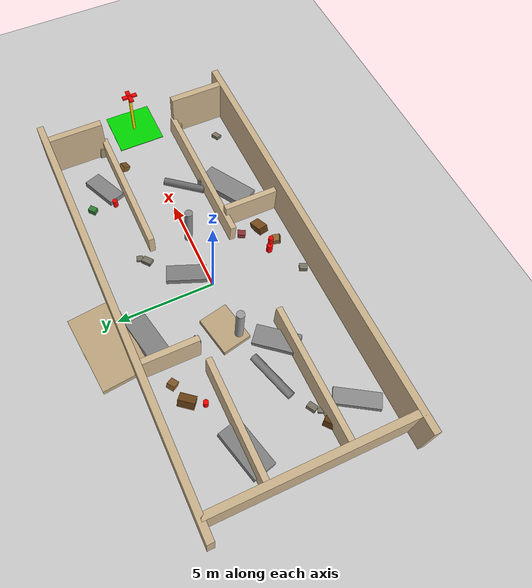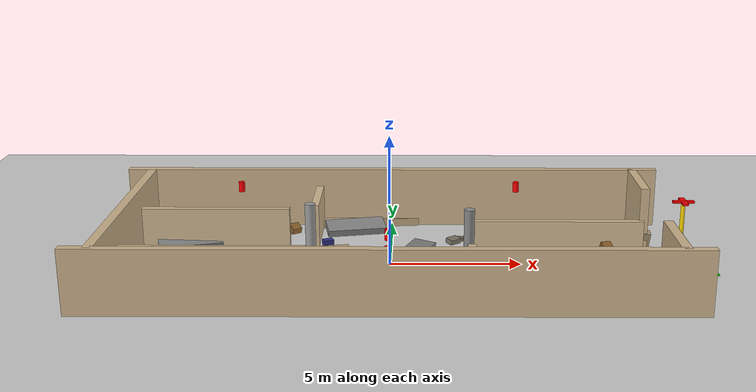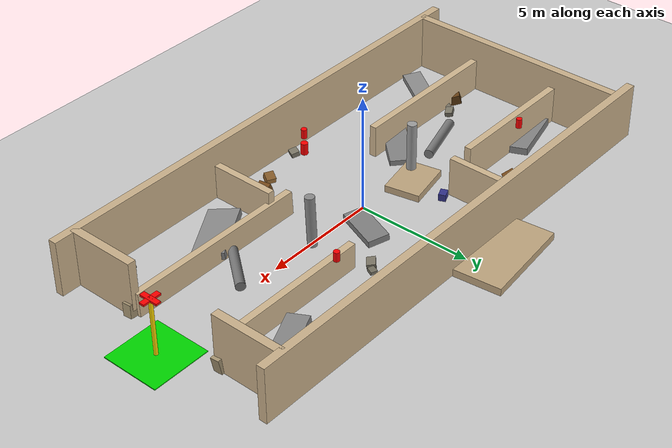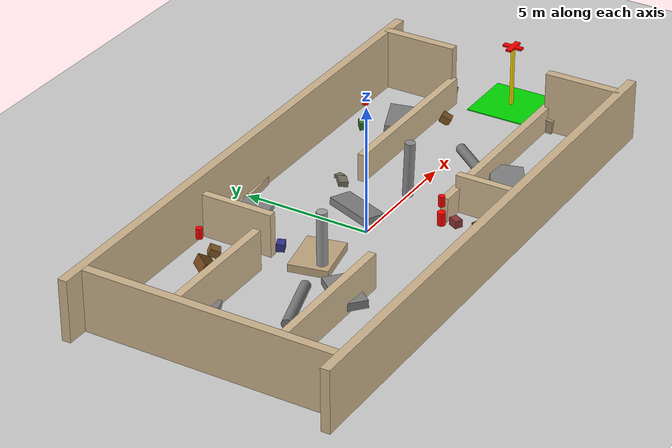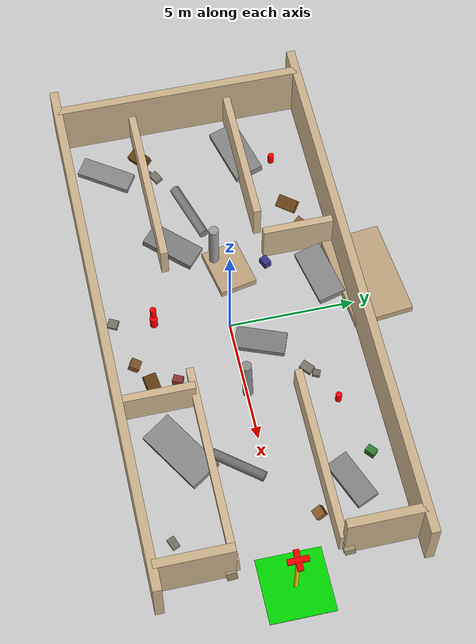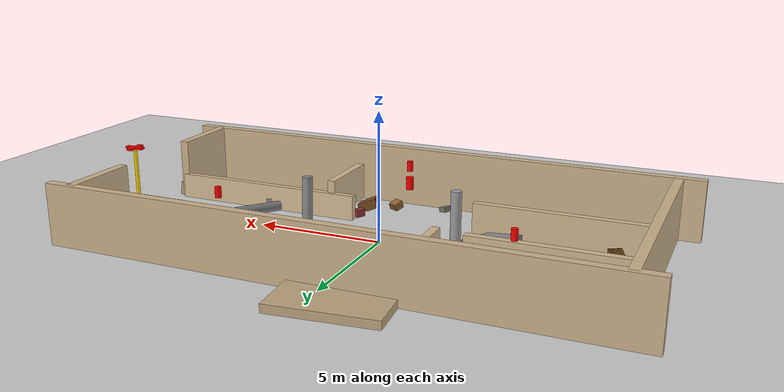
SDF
<sdf version="1.6">
 <world name="school_rescue_world">
  <physics type="ode">
   <real_time_update_rate>1000.0</real_time_update_rate>
   <max_step_size>0.001</max_step_size>
   <real_time_factor>1</real_time_factor>
  </physics>
  <scene>
   <ambient>0.6 0.55 0.50 1</ambient>
   <background>0.55 0.58 0.62 1</background>
   <shadows>true</shadows>
  </scene>
  <include><uri>model://sun</uri></include>
  <include><uri>model://ground_plane</uri></include>
  <model name="wall_north">
   <static>true</static>
   <pose>0 5 1.2 0 0 0</pose>
   <link name="link">
    <collision name="col"><geometry><box><size>22 0.35 2.4</size></box></geometry></collision>
    <visual name="vis">
     <geometry><box><size>22 0.35 2.4</size></box></geometry>
     <material><ambient>0.80 0.70 0.55 1</ambient><diffuse>0.80 0.70 0.55 1</diffuse></material>
    </visual>
   </link>
  </model>
  <model name="wall_north_fallen">
   <static>true</static>
   <pose>-1 5.8 0.12 1.5708 0 0.10</pose>
   <link name="link">
    <collision name="col"><geometry><box><size>4.0 0.35 2.4</size></box></geometry></collision>
    <visual name="vis">
     <geometry><box><size>4.0 0.35 2.4</size></box></geometry>
     <material><ambient>0.75 0.65 0.50 1</ambient><diffuse>0.75 0.65 0.50 1</diffuse></material>
    </visual>
   </link>
  </model>
  <model name="wall_south">
   <static>true</static>
   <pose>0 -5 1.2 0 0 0</pose>
   <link name="link">
    <collision name="col"><geometry><box><size>22 0.35 2.4</size></box></geometry></collision>
    <visual name="vis">
     <geometry><box><size>22 0.35 2.4</size></box></geometry>
     <material><ambient>0.80 0.70 0.55 1</ambient><diffuse>0.80 0.70 0.55 1</diffuse></material>
    </visual>
   </link>
  </model>
  <model name="wall_west">
   <static>true</static>
   <pose>-10 0 1.2 0 0 0</pose>
   <link name="link">
    <collision name="col"><geometry><box><size>0.35 10 2.4</size></box></geometry></collision>
    <visual name="vis">
     <geometry><box><size>0.35 10 2.4</size></box></geometry>
     <material><ambient>0.80 0.70 0.55 1</ambient><diffuse>0.80 0.70 0.55 1</diffuse></material>
    </visual>
   </link>
  </model>
  <model name="wall_east_north">
   <static>true</static>
   <pose>10 3.5 1.2 0 0 0</pose>
   <link name="link">
    <collision name="col"><geometry><box><size>0.35 3 2.4</size></box></geometry></collision>
    <visual name="vis">
     <geometry><box><size>0.35 3 2.4</size></box></geometry>
     <material><ambient>0.80 0.70 0.55 1</ambient><diffuse>0.80 0.70 0.55 1</diffuse></material>
    </visual>
   </link>
  </model>
  <model name="wall_east_south">
   <static>true</static>
   <pose>10 -3.5 1.2 0 0 0</pose>
   <link name="link">
    <collision name="col"><geometry><box><size>0.35 3 2.4</size></box></geometry></collision>
    <visual name="vis">
     <geometry><box><size>0.35 3 2.4</size></box></geometry>
     <material><ambient>0.80 0.70 0.55 1</ambient><diffuse>0.80 0.70 0.55 1</diffuse></material>
    </visual>
   </link>
  </model>
  <model name="gap_rubble_n">
   <static>true</static>
   <pose>10 2.2 0.30 0.15 0.10 0</pose>
   <link name="link">
    <collision name="col"><geometry><box><size>0.6 0.4 0.6</size></box></geometry></collision>
    <visual name="vis">
     <geometry><box><size>0.6 0.4 0.6</size></box></geometry>
     <material><ambient>0.65 0.58 0.45 1</ambient><diffuse>0.65 0.58 0.45 1</diffuse></material>
    </visual>
   </link>
  </model>
  <model name="gap_rubble_s">
   <static>true</static>
   <pose>10 -2.2 0.28 0.10 -0.08 0</pose>
   <link name="link">
    <collision name="col"><geometry><box><size>0.6 0.4 0.55</size></box></geometry></collision>
    <visual name="vis">
     <geometry><box><size>0.6 0.4 0.55</size></box></geometry>
     <material><ambient>0.65 0.58 0.45 1</ambient><diffuse>0.65 0.58 0.45 1</diffuse></material>
    </visual>
   </link>
  </model>
  <model name="corr_n_west">
   <static>true</static>
   <pose>-7 2 0.8 0 0 0</pose>
   <link name="link">
    <collision name="col"><geometry><box><size>6 0.3 1.6</size></box></geometry></collision>
    <visual name="vis">
     <geometry><box><size>6 0.3 1.6</size></box></geometry>
     <material><ambient>0.82 0.72 0.57 1</ambient><diffuse>0.82 0.72 0.57 1</diffuse></material>
    </visual>
   </link>
  </model>
  <model name="corr_n_east">
   <static>true</static>
   <pose>6.5 2 0.55 0 0 0</pose>
   <link name="link">
    <collision name="col"><geometry><box><size>7 0.3 1.1</size></box></geometry></collision>
    <visual name="vis">
     <geometry><box><size>7 0.3 1.1</size></box></geometry>
     <material><ambient>0.82 0.72 0.57 1</ambient><diffuse>0.82 0.72 0.57 1</diffuse></material>
    </visual>
   </link>
  </model>
  <model name="corr_s_west">
   <static>true</static>
   <pose>-6.5 -2 0.70 0 0 0</pose>
   <link name="link">
    <collision name="col"><geometry><box><size>7 0.3 1.4</size></box></geometry></collision>
    <visual name="vis">
     <geometry><box><size>7 0.3 1.4</size></box></geometry>
     <material><ambient>0.82 0.72 0.57 1</ambient><diffuse>0.82 0.72 0.57 1</diffuse></material>
    </visual>
   </link>
  </model>
  <model name="corr_s_east">
   <static>true</static>
   <pose>6 -2 0.50 0.05 0 0</pose>
   <link name="link">
    <collision name="col"><geometry><box><size>8 0.3 1.0</size></box></geometry></collision>
    <visual name="vis">
     <geometry><box><size>8 0.3 1.0</size></box></geometry>
     <material><ambient>0.82 0.72 0.57 1</ambient><diffuse>0.82 0.72 0.57 1</diffuse></material>
    </visual>
   </link>
  </model>
  <model name="class_div_w_n">
   <static>true</static>
   <pose>-3 3.5 0.85 0 0 0</pose>
   <link name="link">
    <collision name="col"><geometry><box><size>0.3 3 1.7</size></box></geometry></collision>
    <visual name="vis">
     <geometry><box><size>0.3 3 1.7</size></box></geometry>
     <material><ambient>0.82 0.72 0.57 1</ambient><diffuse>0.82 0.72 0.57 1</diffuse></material>
    </visual>
   </link>
  </model>
  <model name="class_div_w_fallen">
   <static>true</static>
   <pose>-2.5 0.5 0.15 1.5708 0 0.20</pose>
   <link name="link">
    <collision name="col"><geometry><box><size>2.0 0.3 1.5</size></box></geometry></collision>
    <visual name="vis">
     <geometry><box><size>2.0 0.3 1.5</size></box></geometry>
     <material><ambient>0.75 0.65 0.50 1</ambient><diffuse>0.75 0.65 0.50 1</diffuse></material>
    </visual>
   </link>
  </model>
  <model name="class_div_e_s">
   <static>true</static>
   <pose>3 -3.5 0.75 0 0 0</pose>
   <link name="link">
    <collision name="col"><geometry><box><size>0.3 3 1.5</size></box></geometry></collision>
    <visual name="vis">
     <geometry><box><size>0.3 3 1.5</size></box></geometry>
     <material><ambient>0.82 0.72 0.57 1</ambient><diffuse>0.82 0.72 0.57 1</diffuse></material>
    </visual>
   </link>
  </model>
  <model name="col_1">
   <static>true</static>
   <pose>-3 0 1.2 0 0 0</pose>
   <link name="link">
    <collision name="col">
     <geometry><cylinder><radius>0.20</radius><length>2.4</length></cylinder></geometry>
    </collision>
    <visual name="vis">
     <geometry><cylinder><radius>0.20</radius><length>2.4</length></cylinder></geometry>
     <material><ambient>0.62 0.62 0.62 1</ambient><diffuse>0.62 0.62 0.62 1</diffuse></material>
    </visual>
   </link>
  </model>
  <model name="col_2">
   <static>true</static>
   <pose>3 0 1.1 0.04 0 0</pose>
   <link name="link">
    <collision name="col">
     <geometry><cylinder><radius>0.20</radius><length>2.2</length></cylinder></geometry>
    </collision>
    <visual name="vis">
     <geometry><cylinder><radius>0.20</radius><length>2.2</length></cylinder></geometry>
     <material><ambient>0.55 0.55 0.55 1</ambient><diffuse>0.55 0.55 0.55 1</diffuse></material>
    </visual>
   </link>
  </model>
  <model name="col_fallen_1">
   <static>true</static>
   <pose>-5.5 -0.5 0.20 0 1.5708 0.30</pose>
   <link name="link">
    <collision name="col">
     <geometry><cylinder><radius>0.20</radius><length>2.5</length></cylinder></geometry>
    </collision>
    <visual name="vis">
     <geometry><cylinder><radius>0.20</radius><length>2.5</length></cylinder></geometry>
     <material><ambient>0.48 0.48 0.48 1</ambient><diffuse>0.48 0.48 0.48 1</diffuse></material>
    </visual>
   </link>
  </model>
  <model name="col_fallen_2">
   <static>true</static>
   <pose>6 -1 0.20 0 1.5708 0.90</pose>
   <link name="link">
    <collision name="col">
     <geometry><cylinder><radius>0.20</radius><length>2.2</length></cylinder></geometry>
    </collision>
    <visual name="vis">
     <geometry><cylinder><radius>0.20</radius><length>2.2</length></cylinder></geometry>
     <material><ambient>0.45 0.45 0.45 1</ambient><diffuse>0.45 0.45 0.45 1</diffuse></material>
    </visual>
   </link>
  </model>
  <model name="slab_1">
   <static>true</static>
   <pose>-8 2 0.18 0.12 0 0.25</pose>
   <link name="link">
    <collision name="col"><geometry><box><size>2.5 1.2 0.30</size></box></geometry></collision>
    <visual name="vis">
     <geometry><box><size>2.5 1.2 0.30</size></box></geometry>
     <material><ambient>0.52 0.52 0.52 1</ambient><diffuse>0.52 0.52 0.52 1</diffuse></material>
    </visual>
   </link>
  </model>
  <model name="slab_2">
   <static>true</static>
   <pose>-4 -1.5 0.18 0 0.10 0.85</pose>
   <link name="link">
    <collision name="col"><geometry><box><size>2.2 1.0 0.30</size></box></geometry></collision>
    <visual name="vis">
     <geometry><box><size>2.2 1.0 0.30</size></box></geometry>
     <material><ambient>0.52 0.52 0.52 1</ambient><diffuse>0.52 0.52 0.52 1</diffuse></material>
    </visual>
   </link>
  </model>
  <model name="slab_3">
   <static>true</static>
   <pose>1 1 0.15 0.08 0 1.20</pose>
   <link name="link">
    <collision name="col"><geometry><box><size>2.0 0.9 0.28</size></box></geometry></collision>
    <visual name="vis">
     <geometry><box><size>2.0 0.9 0.28</size></box></geometry>
     <material><ambient>0.50 0.50 0.50 1</ambient><diffuse>0.50 0.50 0.50 1</diffuse></material>
    </visual>
   </link>
  </model>
  <model name="slab_4">
   <static>true</static>
   <pose>5 -3 0.20 0.15 0 0.55</pose>
   <link name="link">
    <collision name="col"><geometry><box><size>2.8 1.3 0.30</size></box></geometry></collision>
    <visual name="vis">
     <geometry><box><size>2.8 1.3 0.30</size></box></geometry>
     <material><ambient>0.54 0.54 0.54 1</ambient><diffuse>0.54 0.54 0.54 1</diffuse></material>
    </visual>
   </link>
  </model>
  <model name="slab_5">
   <static>true</static>
   <pose>7.5 3 0.17 0.10 0.06 0.40</pose>
   <link name="link">
    <collision name="col"><geometry><box><size>2.0 0.9 0.28</size></box></geometry></collision>
    <visual name="vis">
     <geometry><box><size>2.0 0.9 0.28</size></box></geometry>
     <material><ambient>0.52 0.52 0.52 1</ambient><diffuse>0.52 0.52 0.52 1</diffuse></material>
    </visual>
   </link>
  </model>
  <model name="slab_6">
   <static>true</static>
   <pose>-1.5 4 0.16 0.14 0 0.20</pose>
   <link name="link">
    <collision name="col"><geometry><box><size>2.4 1.1 0.30</size></box></geometry></collision>
    <visual name="vis">
     <geometry><box><size>2.4 1.1 0.30</size></box></geometry>
     <material><ambient>0.53 0.53 0.53 1</ambient><diffuse>0.53 0.53 0.53 1</diffuse></material>
    </visual>
   </link>
  </model>
  <model name="slab_7">
   <static>true</static>
   <pose>-8 -3.5 0.18 0.07 0.05 1.00</pose>
   <link name="link">
    <collision name="col"><geometry><box><size>2.2 0.8 0.25</size></box></geometry></collision>
    <visual name="vis">
     <geometry><box><size>2.2 0.8 0.25</size></box></geometry>
     <material><ambient>0.55 0.55 0.55 1</ambient><diffuse>0.55 0.55 0.55 1</diffuse></material>
    </visual>
   </link>
  </model>
  <model name="desk_fallen_1">
   <static>true</static>
   <pose>-5 3.5 0.20 0.50 0 0.90</pose>
   <link name="link">
    <collision name="col"><geometry><box><size>0.8 0.5 0.40</size></box></geometry></collision>
    <visual name="vis">
     <geometry><box><size>0.8 0.5 0.40</size></box></geometry>
     <material><ambient>0.45 0.28 0.10 1</ambient><diffuse>0.45 0.28 0.10 1</diffuse></material>
    </visual>
   </link>
  </model>
  <model name="desk_fallen_2">
   <static>true</static>
   <pose>2 -3.5 0.20 0 0.40 0.20</pose>
   <link name="link">
    <collision name="col"><geometry><box><size>0.8 0.5 0.40</size></box></geometry></collision>
    <visual name="vis">
     <geometry><box><size>0.8 0.5 0.40</size></box></geometry>
     <material><ambient>0.45 0.28 0.10 1</ambient><diffuse>0.45 0.28 0.10 1</diffuse></material>
    </visual>
   </link>
  </model>
  <model name="desk_fallen_3">
   <static>true</static>
   <pose>-8.5 -2 0.20 0.30 0 0.70</pose>
   <link name="link">
    <collision name="col"><geometry><box><size>0.8 0.5 0.40</size></box></geometry></collision>
    <visual name="vis">
     <geometry><box><size>0.8 0.5 0.40</size></box></geometry>
     <material><ambient>0.40 0.25 0.08 1</ambient><diffuse>0.40 0.25 0.08 1</diffuse></material>
    </visual>
   </link>
  </model>
  <model name="chair_1">
   <static>true</static>
   <pose>-4 3.8 0.15 0.40 0 0.60</pose>
   <link name="link">
    <collision name="col"><geometry><box><size>0.4 0.4 0.30</size></box></geometry></collision>
    <visual name="vis">
     <geometry><box><size>0.4 0.4 0.30</size></box></geometry>
     <material><ambient>0.55 0.38 0.18 1</ambient><diffuse>0.55 0.38 0.18 1</diffuse></material>
    </visual>
   </link>
  </model>
  <model name="chair_2">
   <static>true</static>
   <pose>1 -4 0.15 0 0.35 1.10</pose>
   <link name="link">
    <collision name="col"><geometry><box><size>0.4 0.4 0.30</size></box></geometry></collision>
    <visual name="vis">
     <geometry><box><size>0.4 0.4 0.30</size></box></geometry>
     <material><ambient>0.55 0.38 0.18 1</ambient><diffuse>0.55 0.38 0.18 1</diffuse></material>
    </visual>
   </link>
  </model>
  <model name="chair_3">
   <static>true</static>
   <pose>8.5 1.5 0.15 0.50 0 0.30</pose>
   <link name="link">
    <collision name="col"><geometry><box><size>0.4 0.4 0.30</size></box></geometry></collision>
    <visual name="vis">
     <geometry><box><size>0.4 0.4 0.30</size></box></geometry>
     <material><ambient>0.52 0.35 0.15 1</ambient><diffuse>0.52 0.35 0.15 1</diffuse></material>
    </visual>
   </link>
  </model>
  <model name="bag_1">
   <static>true</static>
   <pose>-2.5 2 0.15 0 0 0.40</pose>
   <link name="link">
    <collision name="col"><geometry><box><size>0.40 0.30 0.30</size></box></geometry></collision>
    <visual name="vis">
     <geometry><box><size>0.40 0.30 0.30</size></box></geometry>
     <material><ambient>0.20 0.20 0.55 1</ambient><diffuse>0.20 0.20 0.55 1</diffuse></material>
    </visual>
   </link>
  </model>
  <model name="bag_2">
   <static>true</static>
   <pose>2 -2.5 0.15 0 0 1.10</pose>
   <link name="link">
    <collision name="col"><geometry><box><size>0.40 0.30 0.30</size></box></geometry></collision>
    <visual name="vis">
     <geometry><box><size>0.40 0.30 0.30</size></box></geometry>
     <material><ambient>0.55 0.20 0.20 1</ambient><diffuse>0.55 0.20 0.20 1</diffuse></material>
    </visual>
   </link>
  </model>
  <model name="bag_3">
   <static>true</static>
   <pose>6.5 4 0.15 0 0 0.70</pose>
   <link name="link">
    <collision name="col"><geometry><box><size>0.40 0.30 0.30</size></box></geometry></collision>
    <visual name="vis">
     <geometry><box><size>0.40 0.30 0.30</size></box></geometry>
     <material><ambient>0.20 0.50 0.20 1</ambient><diffuse>0.20 0.50 0.20 1</diffuse></material>
    </visual>
   </link>
  </model>
  <model name="rubble_1a">
   <static>true</static>
   <pose>-7.5 -1.5 0.10 0.20 0.10 0.50</pose>
   <link name="link">
    <collision name="col"><geometry><box><size>0.45 0.32 0.20</size></box></geometry></collision>
    <visual name="vis">
     <geometry><box><size>0.45 0.32 0.20</size></box></geometry>
     <material><ambient>0.48 0.46 0.40 1</ambient><diffuse>0.48 0.46 0.40 1</diffuse></material>
    </visual>
   </link>
  </model>
  <model name="rubble_1b">
   <static>true</static>
   <pose>-7.8 -1.8 0.07 0.10 0.30 1.00</pose>
   <link name="link">
    <collision name="col"><geometry><box><size>0.28 0.22 0.14</size></box></geometry></collision>
    <visual name="vis">
     <geometry><box><size>0.28 0.22 0.14</size></box></geometry>
     <material><ambient>0.46 0.44 0.38 1</ambient><diffuse>0.46 0.44 0.38 1</diffuse></material>
    </visual>
   </link>
  </model>
  <model name="rubble_2a">
   <static>true</static>
   <pose>2.5 2.5 0.10 0.15 0 0.70</pose>
   <link name="link">
    <collision name="col"><geometry><box><size>0.50 0.35 0.20</size></box></geometry></collision>
    <visual name="vis">
     <geometry><box><size>0.50 0.35 0.20</size></box></geometry>
     <material><ambient>0.48 0.46 0.40 1</ambient><diffuse>0.48 0.46 0.40 1</diffuse></material>
    </visual>
   </link>
  </model>
  <model name="rubble_2b">
   <static>true</static>
   <pose>2.8 2.8 0.07 0 0.10 1.20</pose>
   <link name="link">
    <collision name="col"><geometry><box><size>0.30 0.28 0.14</size></box></geometry></collision>
    <visual name="vis">
     <geometry><box><size>0.30 0.28 0.14</size></box></geometry>
     <material><ambient>0.46 0.44 0.38 1</ambient><diffuse>0.46 0.44 0.38 1</diffuse></material>
    </visual>
   </link>
  </model>
  <model name="rubble_3a">
   <static>true</static>
   <pose>8.5 -4 0.10 0.10 0.20 0.40</pose>
   <link name="link">
    <collision name="col"><geometry><box><size>0.45 0.30 0.18</size></box></geometry></collision>
    <visual name="vis">
     <geometry><box><size>0.45 0.30 0.18</size></box></geometry>
     <material><ambient>0.48 0.46 0.40 1</ambient><diffuse>0.48 0.46 0.40 1</diffuse></material>
    </visual>
   </link>
  </model>
  <model name="rubble_4a">
   <static>true</static>
   <pose>-1 -4.5 0.10 0.20 0 1.10</pose>
   <link name="link">
    <collision name="col"><geometry><box><size>0.40 0.35 0.20</size></box></geometry></collision>
    <visual name="vis">
     <geometry><box><size>0.40 0.35 0.20</size></box></geometry>
     <material><ambient>0.48 0.46 0.40 1</ambient><diffuse>0.48 0.46 0.40 1</diffuse></material>
    </visual>
   </link>
  </model>
  <model name="teacher_marker">
   <static>true</static>
   <pose>0 -3 1.5 0 0 0</pose>
   <link name="link">
    <visual name="visual">
     <geometry><cylinder><radius>0.15</radius><length>0.5</length></cylinder></geometry>
     <material><ambient>1 0 0 1</ambient><diffuse>1 0 0 1</diffuse></material>
    </visual>
   </link>
  </model>
  <model name="marker_1">
   <static>true</static>
   <pose>-6 3 2.2 0 0 0</pose>
   <link name="link">
    <visual name="vis">
     <geometry><cylinder><radius>0.12</radius><length>0.40</length></cylinder></geometry>
     <material><ambient>1.0 0.0 0.0 1</ambient><diffuse>1.0 0.0 0.0 1</diffuse></material>
    </visual>
   </link>
  </model>
  <model name="marker_2">
   <static>true</static>
   <pose>0 -3 2.2 0 0 0</pose>
   <link name="link">
    <visual name="vis">
     <geometry><cylinder><radius>0.12</radius><length>0.40</length></cylinder></geometry>
     <material><ambient>1.0 0.0 0.0 1</ambient><diffuse>1.0 0.0 0.0 1</diffuse></material>
    </visual>
   </link>
  </model>
  <model name="marker_3">
   <static>true</static>
   <pose>5 3 2.2 0 0 0</pose>
   <link name="link">
    <visual name="vis">
     <geometry><cylinder><radius>0.12</radius><length>0.40</length></cylinder></geometry>
     <material><ambient>1.0 0.0 0.0 1</ambient><diffuse>1.0 0.0 0.0 1</diffuse></material>
    </visual>
   </link>
  </model>
  <model name="landing_pad">
   <static>true</static>
   <pose>11 0 0.02 0 0 0</pose>
   <link name="link">
    <collision name="col"><geometry><box><size>2.5 2.5 0.04</size></box></geometry></collision>
    <visual name="vis">
     <geometry><box><size>2.5 2.5 0.04</size></box></geometry>
     <material><ambient>0.0 0.85 0.0 1</ambient><diffuse>0.0 0.85 0.0 1</diffuse></material>
    </visual>
   </link>
  </model>
  <model name="beacon_pole">
   <static>true</static>
   <pose>11 0 1.2 0 0 0</pose>
   <link name="link">
    <visual name="vis">
     <geometry><cylinder><radius>0.08</radius><length>2.4</length></cylinder></geometry>
     <material><ambient>1.0 0.85 0.0 1</ambient><diffuse>1.0 0.85 0.0 1</diffuse></material>
    </visual>
   </link>
  </model>
  <model name="cross_h">
   <static>true</static>
   <pose>11 0 2.5 0 0 0</pose>
   <link name="link">
    <visual name="vis">
     <geometry><box><size>0.80 0.22 0.08</size></box></geometry>
     <material><ambient>1.0 0.0 0.0 1</ambient><diffuse>1.0 0.0 0.0 1</diffuse></material>
    </visual>
   </link>
  </model>
  <model name="cross_v">
   <static>true</static>
   <pose>11 0 2.5 0 0 0</pose>
   <link name="link">
    <visual name="vis">
     <geometry><box><size>0.22 0.80 0.08</size></box></geometry>
     <material><ambient>1.0 0.0 0.0 1</ambient><diffuse>1.0 0.0 0.0 1</diffuse></material>
    </visual>
   </link>
  </model>
  <gravity>0 0 -9.81</gravity>
 </world>
</sdf>
